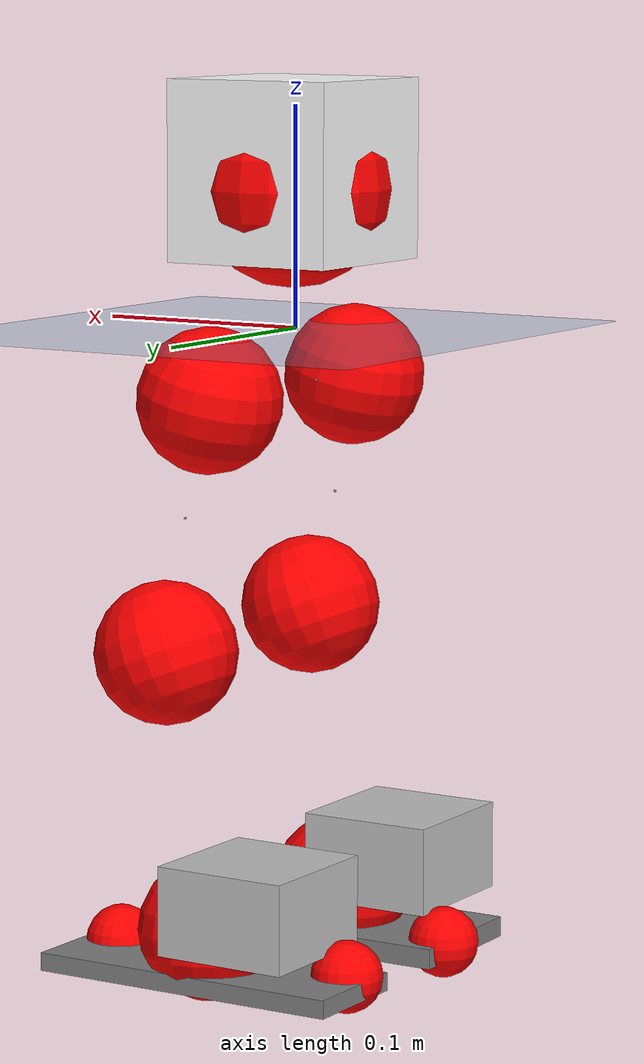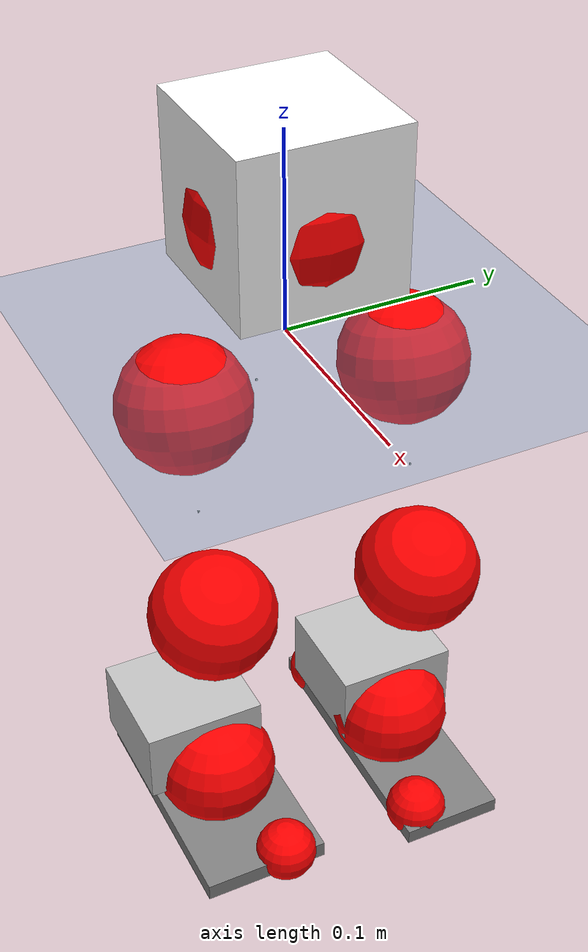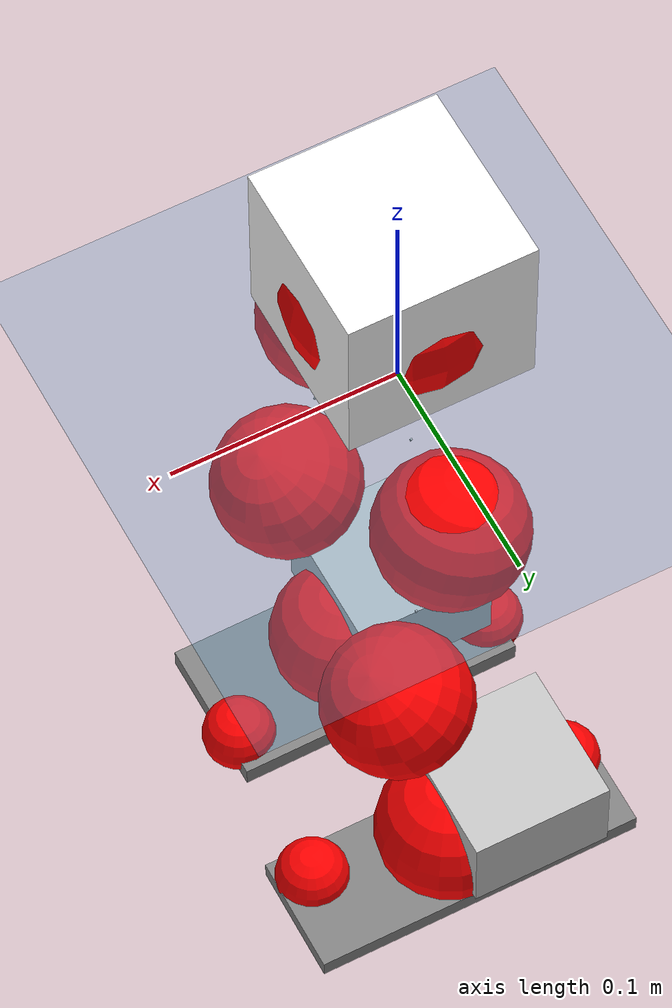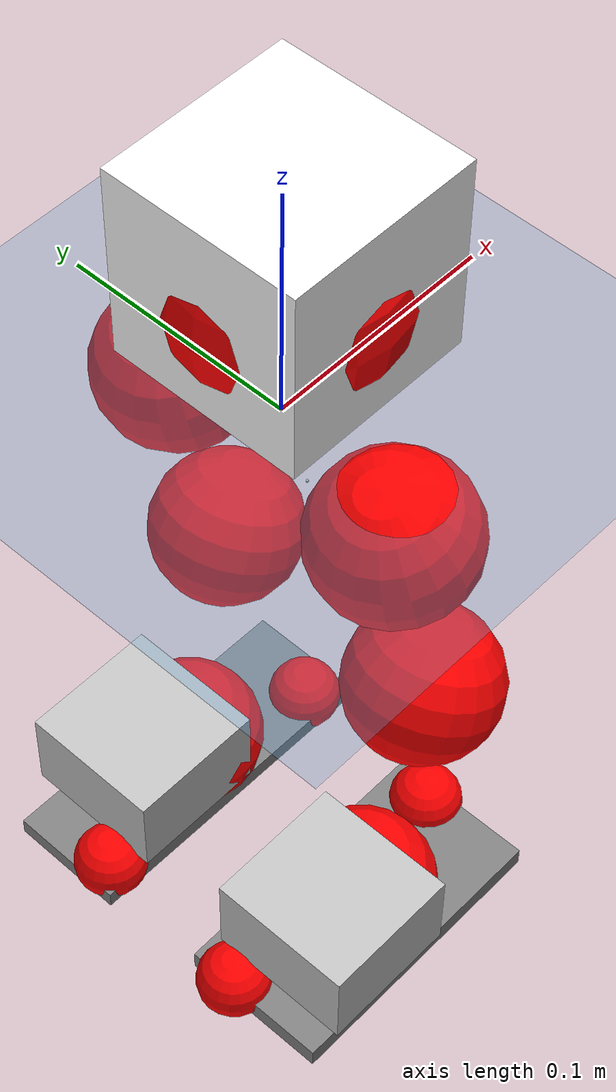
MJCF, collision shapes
<mujoco model="pi_12dof_release_v1">
  <compiler angle="radian" assetdir="assets" balanceinertia="true" inertiafromgeom="false"/>

  <option timestep="0.005" density="1.2" viscosity="2e-05"/>

  <size nkey="1"/>

  <visual>
    <quality shadowsize="8192"/>
    <map shadowclip="0.5"/>
  </visual>

  <default>
    <default class="/">
      <joint armature="0.01" damping="0.01" frictionloss="0.01"/>
      <geom contype="0" conaffinity="0" group="1" solref="-1000 -80"/>
      <site size="0.01 0.005 0.005" group="5"/>
      <general forcelimited="true" biastype="affine" gainprm="20" biasprm="0 -20 -0.5"/>
      <default class="foot">
        <geom size="0.0845 0.036 0.005" type="box" condim="6" group="4" priority="1" friction="0.9 0.2 0.2" solimp="0.015 1 0.005"/>
      </default>
      <default class="reward_collision_sphere">
        <geom group="5" rgba="1 0 0 1"/>
      </default>
    </default>
  </default>

  <asset>
    <texture type="skybox" colorspace="auto" name="//unnamed_texture_0" builtin="gradient" rgb1="0.95 0.95 0.95" rgb2="0.95 0.95 0.95" width="100" height="600"/>
    <texture type="2d" colorspace="auto" name="texplane" builtin="checker" rgb1="0.345 0.575 0.748" rgb2="0.345 0.575 0.748" markrgb="1 1 1" width="512" height="512"/>
    <material name="MatPlane" class="/" texture="texplane" texuniform="true" texrepeat="2 2" specular="0.9"/>
    <mesh name="baselink_1" class="/" file="baselink_1.STL"/>
    <mesh name="r_hip_pitch_link" class="/" file="r_hip_pitch_link.STL"/>
    <mesh name="r_hip_roll_link" class="/" file="r_hip_roll_link.STL"/>
    <mesh name="r_thigh_link" class="/" file="r_thigh_link.STL"/>
    <mesh name="r_calf_link" class="/" file="r_calf_link.STL"/>
    <mesh name="r_ankle_pitch_link" class="/" file="r_ankle_pitch_link.STL"/>
    <mesh name="r_ankle_roll_link" class="/" file="r_ankle_roll_link.STL"/>
    <mesh name="l_hip_pitch_link" class="/" file="l_hip_pitch_link.STL"/>
    <mesh name="l_hip_roll_link" class="/" file="l_hip_roll_link.STL"/>
    <mesh name="l_thigh_link" class="/" file="l_thigh_link.STL"/>
    <mesh name="l_calf_link" class="/" file="l_calf_link.STL"/>
    <mesh name="l_ankle_pitch_link" class="/" file="l_ankle_pitch_link.STL"/>
    <mesh name="l_ankle_roll_link" class="/" file="l_ankle_roll_link.STL"/>
  </asset>

  <worldbody>
    <geom name="floor" class="/" size="100 100 0.125" type="plane" group="0" material="MatPlane"/>
    <light name="toplight_shadow" class="/" pos="0 0 5" dir="0.0990148 0.0990148 -0.990148" type="directional" ambient="0.04 0.04 0.04" diffuse="0.55 0.55 0.55" specular="0.12 0.12 0.12"/>
    <light name="toplight_fill" class="/" pos="0 0 5" dir="0.0990148 0.0990148 -0.990148" type="directional" castshadow="false" ambient="0.04 0.04 0.04" diffuse="0.3 0.3 0.3" specular="0.08 0.08 0.08"/>
    <body name="trunk" pos="0.00206575 -0.000827999 0.0046297" quat="0.999998 -0.000418135 -0.00133952 0.00120766">
      <inertial pos="0.00586614 -0.0026126 0.0344041" quat="0.706031 0.0169962 0.00991244 0.707908" mass="1.10232" diaginertia="0.00527461 0.00145253 0.00157379"/>
      <joint name="//unnamed_joint_0" type="free"/>
      <geom name="//unnamed_geom_1" class="/" type="mesh" density="0" rgba="1 1 1 1" mesh="baselink_1"/>
      <geom name="//unnamed_geom_2" class="/" size="0.0406975 0.0406975 0.0406975" pos="0 0 0.0666672" type="box" rgba="1 1 1 1"/>
      <geom name="//unnamed_geom_3" class="reward_collision_sphere" size="0.0447673" pos="0 0 0.0583338"/>
      <site name="imu" class="/" pos="0.0123794 0.0019909 0.00794391" size="0.0081395"/>
      <camera name="track" class="/" pos="0 -1.41633 0" quat="0.707107 0.707107 0 0" mode="trackcom"/>
      <camera name="ego_camera" class="/" pos="0.0675261 0 0.150001" quat="-0.5 -0.5 0.5 0.5"/>
      <body name="r_hip_pitch_link" pos="-0.00420117 -0.0134378 -0.0290816" quat="0.992178 4.7689e-05 -0.124831 -0.000173035">
        <inertial pos="0.004076 -0.0415485 0.00415928" quat="-0.0145622 0.700724 -0.0487396 0.711617" mass="0.1982" diaginertia="6.29428e-05 1.68283e-05 3.30491e-05"/>
        <joint name="r_hip_pitch_joint" class="/" pos="0 0 0" axis="0.00415901 -0.999991 -0.000560584" range="-1.68816 1.19692" armature="0.00770891" damping="0.0197117" frictionloss="0.00909674"/>
        <geom name="//unnamed_geom_4" class="/" type="mesh" density="0" rgba="0.75294 0.75294 0.75294 1" mesh="r_hip_pitch_link"/>
        <geom name="//unnamed_geom_5" class="/" size="0.000406975 0.000406975 0.000406975" type="box" rgba="0.75294 0.75294 0.75294 1"/>
        <body name="r_hip_roll_link" pos="0.002443 -0.0379022 -0.00174456" quat="1 2.59263e-05 -2.03584e-05 1.385e-05">
          <inertial pos="0.00150561 -0.00049656 -0.056386" quat="0.702271 -0.0724237 -0.09042 0.70242" mass="0.223441" diaginertia="0.000210831 5.10792e-05 5.46439e-05"/>
          <joint name="r_hip_roll_joint" class="/" pos="0 0 0" axis="-0.999986 0.0013663 -0.00503045" range="-0.1327 0.515027" armature="0.0102457" damping="0.00334856" frictionloss="0.00821528"/>
          <geom name="//unnamed_geom_6" class="/" type="mesh" density="0" rgba="0.75294 0.75294 0.75294 1" mesh="r_hip_roll_link"/>
          <geom name="//unnamed_geom_7" class="/" size="0.000406975 0.000406975 0.000406975" type="box" rgba="0.75294 0.75294 0.75294 1"/>
          <geom name="//unnamed_geom_8" class="reward_collision_sphere" size="0.032558"/>
          <body name="r_thigh_link" pos="-0.00427996 0.000732648 -0.0561243" quat="1 -0.000171206 -0.000532342 4.33983e-05">
            <inertial pos="0.00606764 0.00493506 -0.0397626" quat="0.736619 0.676299 -0.00346482 0.00024785" mass="0.0599439" diaginertia="7.67544e-05 1.71361e-05 2.33971e-05"/>
            <joint name="r_thigh_joint" class="/" pos="0 0 0" axis="0.00479076 -0.0006403 -0.999988" range="-0.324705 0.543124" armature="0.00998056" damping="0" frictionloss="0.00716793"/>
            <geom name="//unnamed_geom_9" class="/" type="mesh" density="0" rgba="0.75294 0.75294 0.75294 1" mesh="r_thigh_link"/>
            <geom name="//unnamed_geom_10" class="/" size="0.000406975 0.000406975 0.000406975" type="box" rgba="0.75294 0.75294 0.75294 1"/>
            <body name="r_calf_link" pos="-0.000545919 -0.000496792 -0.056409" quat="0.947101 -0.00166548 0.32093 0.000777128">
              <inertial pos="-0.00260623 -0.00065297 -0.0597842" quat="0.999647 0.0113072 0.0043214 0.0236555" mass="0.400285" diaginertia="0.00208383 0.000606093 6.99771e-05"/>
              <joint name="r_calf_joint" class="/" pos="0 0 0" axis="-0.00676794 -0.999873 0.0144533" range="-1.63781 0.664929" armature="0.00826047" damping="0.00446664" frictionloss="0.00877524"/>
              <geom name="//unnamed_geom_11" class="/" type="mesh" density="0" rgba="0.75294 0.75294 0.75294 1" mesh="r_calf_link"/>
              <geom name="//unnamed_geom_12" class="/" size="0.000406975 0.000406975 0.000406975" type="box" rgba="0.75294 0.75294 0.75294 1"/>
              <geom name="//unnamed_geom_13" class="reward_collision_sphere" size="0.032558"/>
              <body name="r_ankle_pitch_link" pos="-0.0013912 0.000383581 -0.122662" quat="0.980218 -0.000298955 -0.197919 -6.43974e-05">
                <inertial pos="0.00277972 0.00170675 -0.00263823" quat="0.0126881 0.703348 -0.00555573 0.710711" mass="0.0932839" diaginertia="0.000183337 4.05118e-05 4.9155e-05"/>
                <joint name="r_ankle_pitch_joint" class="/" pos="0 0 0" axis="0.000411401 -1 -0.000376641" stiffness="0.00682023" range="-1.31332 0.490698" armature="0.00729551" damping="0" frictionloss="0.00908483"/>
                <geom name="//unnamed_geom_14" class="/" type="mesh" density="0" rgba="0.75294 0.75294 0.75294 1" mesh="r_ankle_pitch_link"/>
                <geom name="//unnamed_geom_15" class="/" size="0.0317441 0.032558 0.0203488" type="box" rgba="0.75294 0.75294 0.75294 1"/>
                <body name="r_ankle_roll_link" pos="0.0722066 0.00730437 -0.000939936" quat="0.999999 -0.000459319 0.000533745 0.00110917">
                  <inertial pos="-0.0250267 0.00356792 -0.0141155" quat="0.548202 0.421052 0.455773 0.560768" mass="0.283447" diaginertia="0.000689514 0.000184954 0.000118922"/>
                  <joint name="r_ankle_roll_joint" class="/" pos="0 0 0" axis="-0.999984 0.00302138 -0.00488532" stiffness="0.00294065" range="-0.0416343 0.159956" armature="0.00922341" damping="0" frictionloss="0.00969119"/>
                  <geom name="//unnamed_geom_16" class="/" type="mesh" density="0" rgba="0.75294 0.75294 0.75294 1" mesh="r_ankle_roll_link"/>
                  <geom name="//unnamed_geom_17" class="/" type="mesh" rgba="0.75294 0.75294 0.75294 1" mesh="r_ankle_roll_link"/>
                  <geom name="right_foot" class="foot" size="0.0659686 0.0336953 0.00472035" pos="-0.0459177 0 -0.036667"/>
                  <geom name="//unnamed_geom_19" class="reward_collision_sphere" size="0.032558" pos="-0.0450174 0 -0.0166668"/>
                  <geom name="//unnamed_geom_20" class="reward_collision_sphere" size="0.016279" pos="0.0135052 0.0141633 -0.0333336"/>
                  <geom name="//unnamed_geom_21" class="reward_collision_sphere" size="0.016279" pos="-0.108042 0.0141633 -0.0333336"/>
                  <site name="right_foot" class="foot" pos="-0.0459177 0 -0.036667" size="0.0081395"/>
                </body>
              </body>
            </body>
          </body>
        </body>
      </body>
      <body name="l_hip_pitch_link" pos="0.000627613 0.0171074 -0.0284942" quat="0.9923 -0.000460257 -0.123856 0.000332867">
        <inertial pos="-0.00176592 0.0416761 0.00458239" quat="-0.0452375 0.701835 0.0253911 0.710448" mass="0.204102" diaginertia="7.43612e-05 1.90405e-05 4.09931e-05"/>
        <joint name="l_hip_pitch_joint" class="/" pos="0 0 0" axis="0.00732093 0.999918 0.0104857" stiffness="0.00152985" range="-1.15701 1.73461" armature="0.00820636" damping="0.0102908" frictionloss="0.00849112"/>
        <geom name="//unnamed_geom_22" class="/" type="mesh" density="0" rgba="0.75294 0.75294 0.75294 1" mesh="l_hip_pitch_link"/>
        <geom name="//unnamed_geom_23" class="/" size="0.000406975 0.000406975 0.000406975" type="box" rgba="0.75294 0.75294 0.75294 1"/>
        <body name="l_hip_roll_link" pos="0.00402957 0.0425288 -0.00429615" quat="1 0.000251162 0.00012423 -0.000584174">
          <inertial pos="-0.00681804 0.00114596 -0.0456712" quat="0.699752 -0.0748031 -0.0778618 0.706179" mass="0.192516" diaginertia="0.000174353 4.71434e-05 4.75596e-05"/>
          <joint name="l_hip_roll_joint" class="/" pos="0 0 0" axis="-0.99997 -0.00296937 -0.00712769" range="-0.507046 0.104711" armature="0.0084816" damping="0.00298393" frictionloss="0.00819515"/>
          <geom name="//unnamed_geom_24" class="/" type="mesh" density="0" rgba="0.75294 0.75294 0.75294 1" mesh="l_hip_roll_link"/>
          <geom name="//unnamed_geom_25" class="/" size="0.000406975 0.000406975 0.000406975" type="box" rgba="0.75294 0.75294 0.75294 1"/>
          <geom name="//unnamed_geom_26" class="reward_collision_sphere" size="0.032558"/>
          <body name="l_thigh_link" pos="0.000650892 -0.00173351 -0.055517" quat="1 0.00044508 0.000706252 -8.3218e-05">
            <inertial pos="0.00457051 -0.00158477 -0.0349552" quat="0.685407 0.728103 -0.00514402 -0.00753357" mass="0.0620301" diaginertia="7.43114e-05 1.6827e-05 2.40023e-05"/>
            <joint name="l_thigh_joint" class="/" pos="0 0 0" axis="0.00464257 -0.0023834 -0.999986" range="-0.613118 0.241773" armature="0.00726983" damping="0" frictionloss="0.00610537"/>
            <geom name="//unnamed_geom_27" class="/" type="mesh" density="0" rgba="0.75294 0.75294 0.75294 1" mesh="l_thigh_link"/>
            <geom name="//unnamed_geom_28" class="/" size="0.000406975 0.000406975 0.000406975" type="box" rgba="0.75294 0.75294 0.75294 1"/>
            <body name="l_calf_link" pos="-0.00607277 0.00178922 -0.0616492" quat="0.947727 0.000150706 0.319083 -0.000262438">
              <inertial pos="0.00203991 0.00202371 -0.0593813" quat="0.999893 0.00234865 -0.0123759 -0.00750018" mass="0.443203" diaginertia="0.00186494 0.000586522 6.67759e-05"/>
              <joint name="l_calf_joint" class="/" pos="0 0 0" axis="0.00406455 0.999985 0.0037588" stiffness="0.00856789" range="-0.595368 1.58087" armature="0.00905042" damping="0.00394066" frictionloss="0.00806714"/>
              <geom name="//unnamed_geom_29" class="/" type="mesh" density="0" rgba="0.75294 0.75294 0.75294 1" mesh="l_calf_link"/>
              <geom name="//unnamed_geom_30" class="/" size="0.000406975 0.000406975 0.000406975" type="box" rgba="0.75294 0.75294 0.75294 1"/>
              <geom name="//unnamed_geom_31" class="reward_collision_sphere" size="0.032558"/>
              <body name="l_ankle_pitch_link" pos="-0.0041293 0.00288289 -0.119691" quat="0.980054 0.000350603 -0.198727 -0.00129873">
                <inertial pos="0.00614829 -0.00160176 0.00301847" quat="-0.00285132 0.708135 0.00256398 0.706067" mass="0.0980638" diaginertia="0.000171002 3.8653e-05 4.82202e-05"/>
                <joint name="l_ankle_pitch_joint" class="/" pos="0 0 0" axis="-0.00273345 0.999996 0.000242893" range="-0.502659 1.33424" armature="0.00744383" damping="0.0328564" frictionloss="0.00883226"/>
                <geom name="//unnamed_geom_32" class="/" type="mesh" density="0" rgba="0.75294 0.75294 0.75294 1" mesh="l_ankle_pitch_link"/>
                <geom name="//unnamed_geom_33" class="/" size="0.0317441 0.032558 0.0203488" type="box" rgba="0.75294 0.75294 0.75294 1"/>
                <body name="l_ankle_roll_link" pos="0.071312 -0.00134228 0.00222194" quat="0.999996 0.000354787 0.00265225 -0.00111064">
                  <inertial pos="-0.0212674 -3.76994e-05 -0.0124782" quat="0.572201 0.427158 0.422681 0.558089" mass="0.271677" diaginertia="0.000651431 0.000186126 0.000119481"/>
                  <joint name="l_ankle_roll_joint" class="/" pos="0 0 0" axis="-1 0.000179794 -0.000719543" range="-0.116655 0.264182" armature="0.00858374" damping="0.00787424" frictionloss="0.00766509"/>
                  <geom name="//unnamed_geom_34" class="/" type="mesh" density="0" rgba="0.75294 0.75294 0.75294 1" mesh="l_ankle_roll_link"/>
                  <geom name="//unnamed_geom_35" class="/" type="mesh" rgba="0.75294 0.75294 0.75294 1" mesh="l_ankle_roll_link"/>
                  <geom name="left_foot" class="foot" size="0.0752987 0.0270593 0.00417222" pos="-0.0459177 0 -0.036667"/>
                  <geom name="//unnamed_geom_37" class="reward_collision_sphere" size="0.032558" pos="-0.0450174 0 -0.0166668"/>
                  <geom name="//unnamed_geom_38" class="reward_collision_sphere" size="0.016279" pos="0.0135052 -0.0141633 -0.0333336"/>
                  <geom name="//unnamed_geom_39" class="reward_collision_sphere" size="0.016279" pos="-0.108042 -0.0141633 -0.0333336"/>
                  <site name="left_foot" class="foot" pos="-0.0459177 0 -0.036667" size="0.0081395"/>
                </body>
              </body>
            </body>
          </body>
        </body>
      </body>
    </body>
  </worldbody>

  <contact>
    <pair class="/" geom1="floor" geom2="right_foot" name="//unnamed_contact_1"/>
    <pair class="/" geom1="floor" geom2="left_foot" name="//unnamed_contact_0"/>
  </contact>

  <actuator>
    <general name="r_hip_pitch_joint" class="/" joint="r_hip_pitch_joint" forcerange="-15.4068 15.4068" gainprm="18.5796" biasprm="0 -18.5796 -0.443686"/>
    <general name="r_hip_roll_joint" class="/" joint="r_hip_roll_joint" forcerange="-20.4402 20.4402" gainprm="18.5796" biasprm="0 -18.5796 -0.443686"/>
    <general name="r_thigh_joint" class="/" joint="r_thigh_joint" forcerange="-17.6662 17.6662" gainprm="18.5796" biasprm="0 -18.5796 -0.443686"/>
    <general name="r_calf_joint" class="/" joint="r_calf_joint" forcerange="-13.4697 13.4697" gainprm="18.5796" biasprm="0 -18.5796 -0.443686"/>
    <general name="r_ankle_pitch_joint" class="/" joint="r_ankle_pitch_joint" forcerange="-16.0568 16.0568" gainprm="18.5796" biasprm="0 -18.5796 -0.443686"/>
    <general name="r_ankle_roll_joint" class="/" joint="r_ankle_roll_joint" forcerange="-20.3378 20.3378" gainprm="18.5796" biasprm="0 -18.5796 -0.443686"/>
    <general name="l_hip_pitch_joint" class="/" joint="l_hip_pitch_joint" forcerange="-17.525 17.525" gainprm="18.5796" biasprm="0 -18.5796 -0.443686"/>
    <general name="l_hip_roll_joint" class="/" joint="l_hip_roll_joint" forcerange="-18.6643 18.6643" gainprm="18.5796" biasprm="0 -18.5796 -0.443686"/>
    <general name="l_thigh_joint" class="/" joint="l_thigh_joint" forcerange="-17.4302 17.4302" gainprm="18.5796" biasprm="0 -18.5796 -0.443686"/>
    <general name="l_calf_joint" class="/" joint="l_calf_joint" forcerange="-15.6075 15.6075" gainprm="18.5796" biasprm="0 -18.5796 -0.443686"/>
    <general name="l_ankle_pitch_joint" class="/" joint="l_ankle_pitch_joint" forcerange="-17.5434 17.5434" gainprm="18.5796" biasprm="0 -18.5796 -0.443686"/>
    <general name="l_ankle_roll_joint" class="/" joint="l_ankle_roll_joint" forcerange="-17.4571 17.4571" gainprm="18.5796" biasprm="0 -18.5796 -0.443686"/>
  </actuator>

  <sensor>
    <gyro site="imu" name="imu_angular_velocity"/>
    <velocimeter site="imu" name="imu_linear_velocity"/>
    <framelinvel objtype="site" objname="left_foot" name="left_foot_global_linear_velocity"/>
    <framelinvel objtype="site" objname="right_foot" name="right_foot_global_linear_velocity"/>
  </sensor>

  <keyframe>
    <key name="home" qpos="0 0 0.291 1 0 0 0 0.4 0 0 -0.8 0.4 0 -0.4 0 0 0.8 -0.4 0"/>
  </keyframe>
</mujoco>
